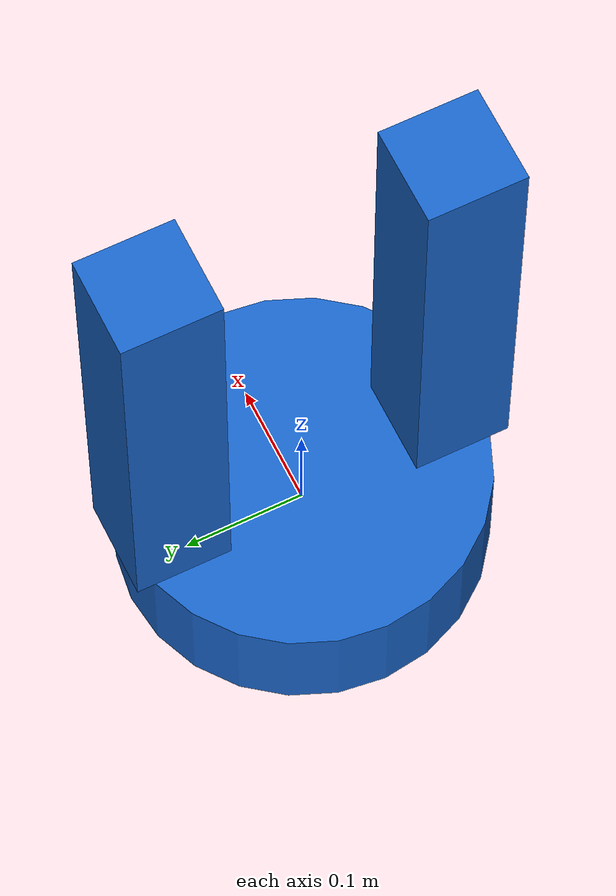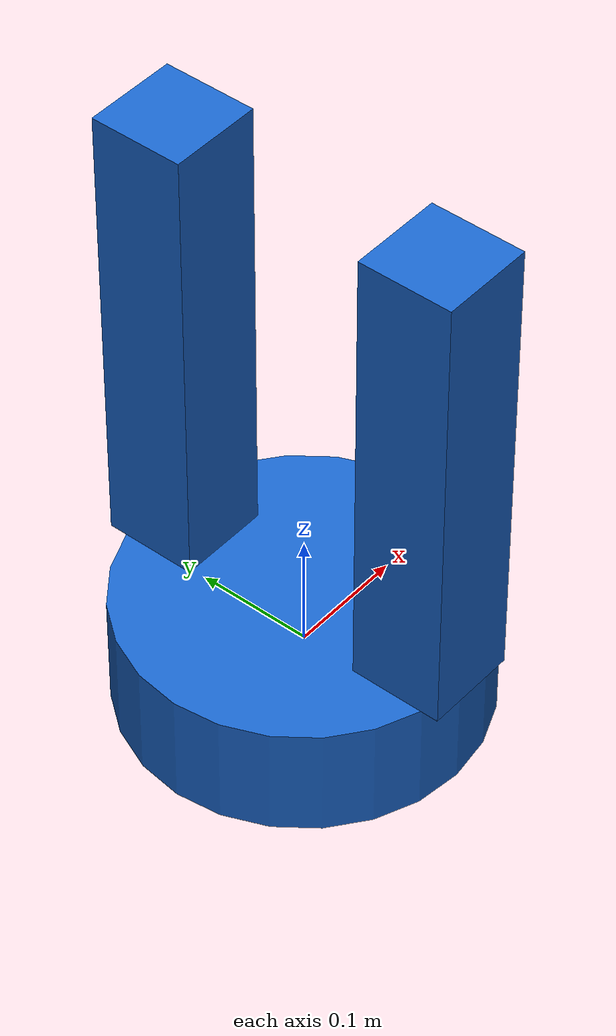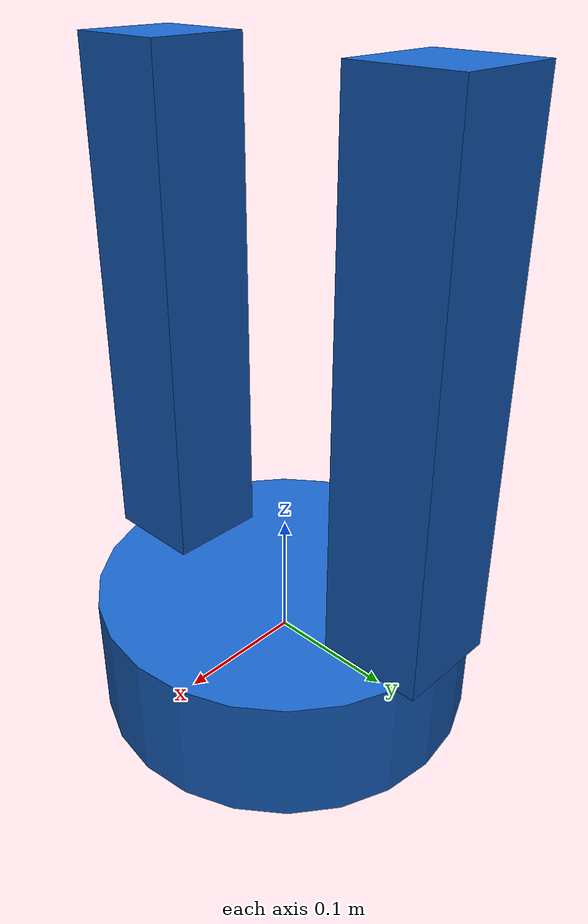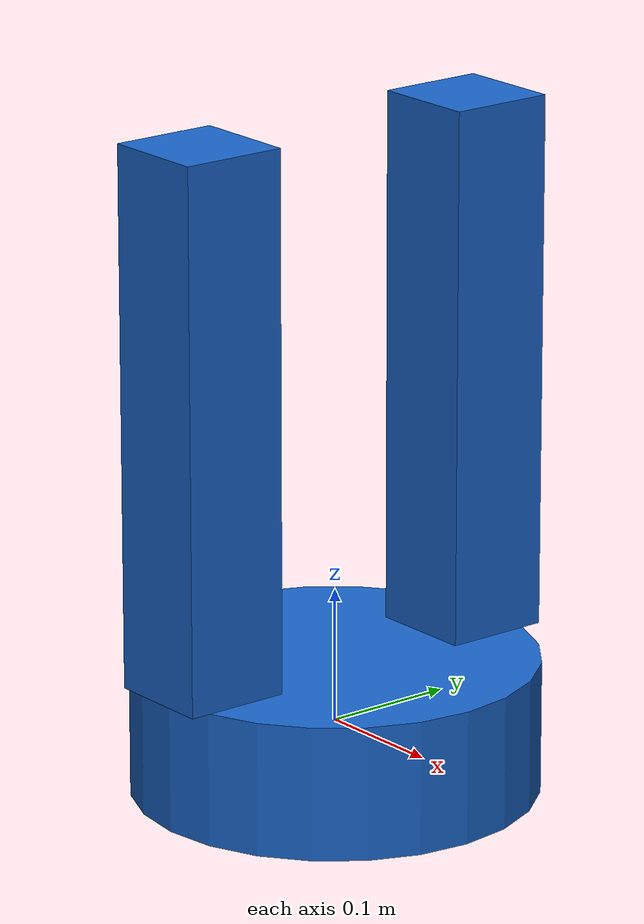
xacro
<?xml version="1.0"?>
<robot xmlns:xacro="http://www.ros.org/wiki/xacro"
       name="reusable_robot">

  <!-- 반복되는 치수와 색상을 한곳에서 관리한다. -->
  <xacro:property name="base_radius" value="0.15"/>
  <xacro:property name="base_height" value="0.10"/>
  <xacro:property name="arm_length" value="0.40"/>
  <xacro:property name="arm_width" value="0.08"/>

  <material name="blue">
    <color rgba="0.1 0.4 0.8 1.0"/>
  </material>

  <link name="base_link">
    <visual>
      <geometry>
        <cylinder radius="${base_radius}"
                  length="${base_height}"/>
      </geometry>
      <material name="blue"/>
    </visual>
  </link>
  <xacro:macro name="simple_arm" params="prefix side">
    <link name="${prefix}_arm_link">
      <visual>
        <origin xyz="0 0 ${arm_length / 2.0}" rpy="0 0 0"/>
        <geometry>
          <box size="${arm_width} ${arm_width} ${arm_length}"/>
        </geometry>
        <material name="blue"/>
      </visual>
      <collision>
        <origin xyz="0 0 ${arm_length / 2.0}" rpy="0 0 0"/>
        <geometry>
          <box size="${arm_width} ${arm_width} ${arm_length}"/>
        </geometry>
      </collision>
      <inertial>
        <origin xyz="0 0 ${arm_length / 2.0}" rpy="0 0 0"/>
        <mass value="1.0"/>
        <inertia ixx="0.014" ixy="0" ixz="0"
                 iyy="0.014" iyz="0" izz="0.001"/>
      </inertial>
    </link>

    <joint name="${prefix}_arm_joint" type="revolute">
      <parent link="base_link"/>
      <child link="${prefix}_arm_link"/>
      <origin xyz="0 ${side * 0.12} ${base_height / 2.0}" rpy="0 0 0"/>
      <axis xyz="0 1 0"/>
      <limit lower="-1.57" upper="1.57"
             effort="5.0" velocity="1.0"/>
    </joint>
  </xacro:macro>

  <xacro:simple_arm prefix="left" side="1"/>
  <xacro:simple_arm prefix="right" side="-1"/>

</robot>
